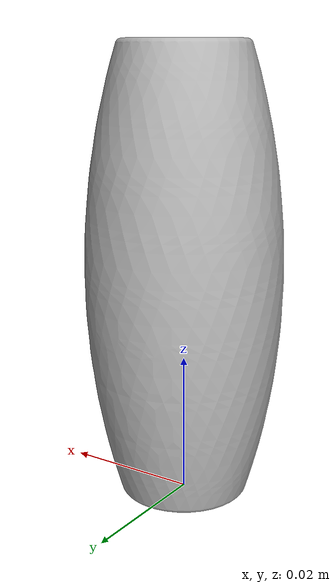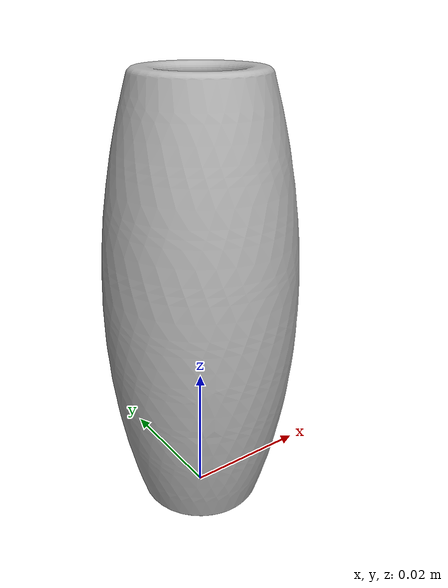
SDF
<?xml version="1.0" ?>
<sdf version="1.3">
  <model name="omni_wheel_roll">
    <static>true</static>
    <link name="link">
      <pose>0 0 0 0 0 0</pose>
      <collision name="collision">
        <geometry>
          <mesh>
            <uri>model://omni_wheel_roll/meshes/omni_wheel_roll.dae</uri>
          </mesh>
        </geometry>
      </collision>
      <visual name="visual">
        <geometry>
          <mesh>
            <uri>model://omni_wheel_roll/meshes/omni_wheel_roll.dae</uri>
          </mesh>
        </geometry>
      </visual>
    </link>
  </model>
</sdf>
